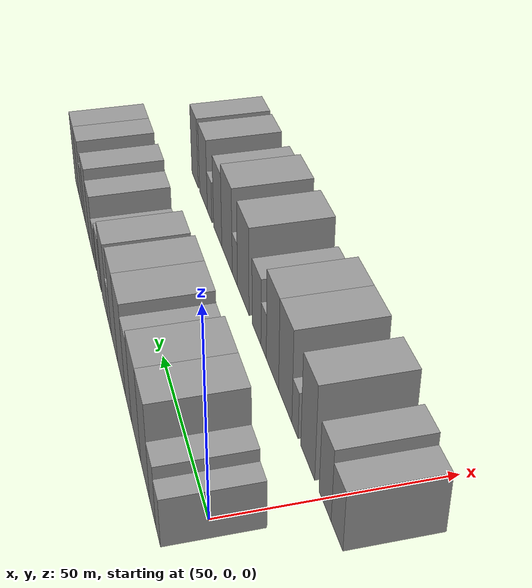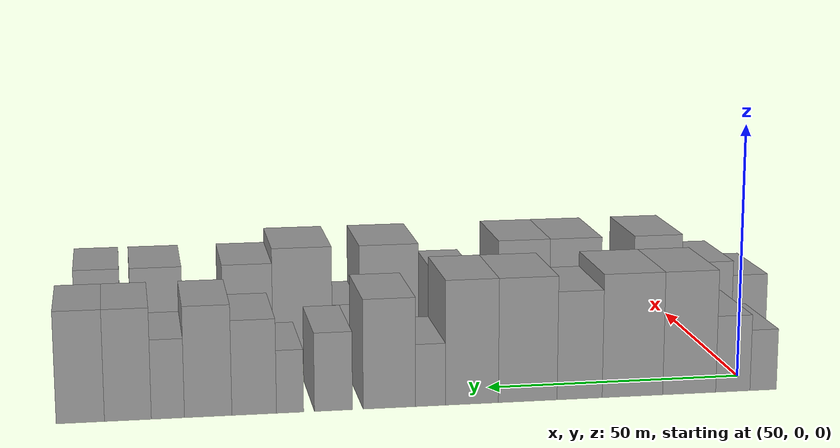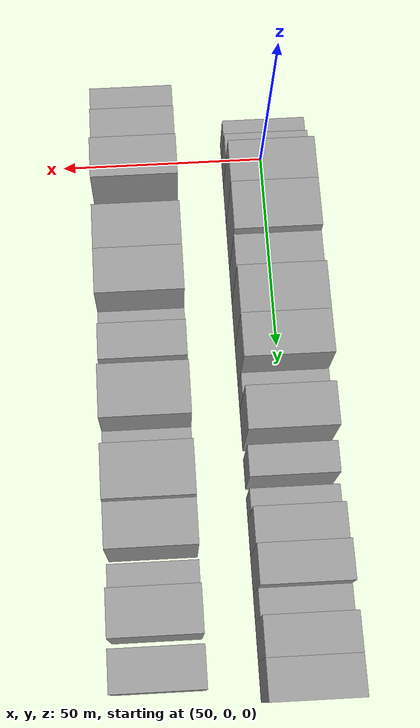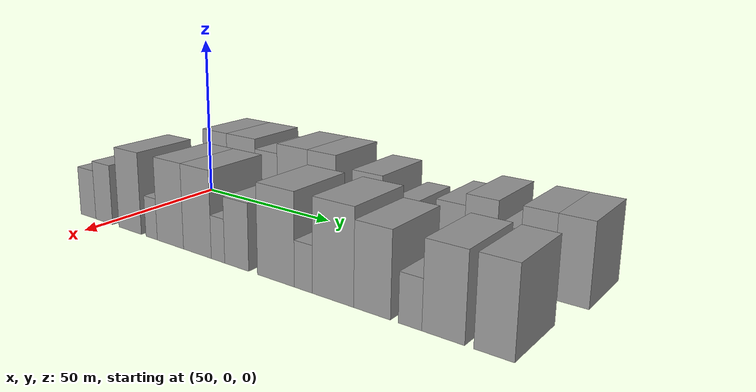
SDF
<sdf version="1.6">
 <world name="default">
  <model name="building_33">
   <static>1</static>
   <pose>50.0000 -1.9097 0 0.000000 0.000000 0.000000</pose>
   <link name="link">
    <pose>0 0 6.00 0 0 0</pose>
    <collision name="collision"><geometry><box><size>20.0000 5.2747 12.0000</size></box></geometry></collision>
    <visual name="visual">
     <cast_shadows>0</cast_shadows>
     <geometry><box><size>20.0000 5.2747 12.0000</size></box></geometry>
     <material>
      <script>
       <uri>model://grey_wall/materials/scripts</uri>
       <uri>model://grey_wall/materials/textures</uri>
       <name>vrc/grey_wall</name>
      </script>
     </material>
    </visual>
   </link>
  </model>
  <model name="building_34">
   <static>1</static>
   <pose>50.0000 4.1421 0 0.000000 0.000000 0.000000</pose>
   <link name="link">
    <pose>0 0 7.50 0 0 0</pose>
    <collision name="collision"><geometry><box><size>20.0000 6.8289 15.0000</size></box></geometry></collision>
    <visual name="visual">
     <cast_shadows>0</cast_shadows>
     <geometry><box><size>20.0000 6.8289 15.0000</size></box></geometry>
     <material>
      <script>
       <uri>model://grey_wall/materials/scripts</uri>
       <uri>model://grey_wall/materials/textures</uri>
       <name>vrc/grey_wall</name>
      </script>
     </material>
    </visual>
   </link>
  </model>
  <model name="building_35">
   <static>1</static>
   <pose>50.0000 12.7904 0 0.000000 0.000000 0.000000</pose>
   <link name="link">
    <pose>0 0 12.00 0 0 0</pose>
    <collision name="collision"><geometry><box><size>20.0000 10.4679 24.0000</size></box></geometry></collision>
    <visual name="visual">
     <cast_shadows>0</cast_shadows>
     <geometry><box><size>20.0000 10.4679 24.0000</size></box></geometry>
     <material>
      <script>
       <uri>model://grey_wall/materials/scripts</uri>
       <uri>model://grey_wall/materials/textures</uri>
       <name>vrc/grey_wall</name>
      </script>
     </material>
    </visual>
   </link>
  </model>
  <model name="building_36">
   <static>1</static>
   <pose>50.0000 23.9557 0 0.000000 0.000000 0.000000</pose>
   <link name="link">
    <pose>0 0 12.00 0 0 0</pose>
    <collision name="collision"><geometry><box><size>20.0000 11.8626 24.0000</size></box></geometry></collision>
    <visual name="visual">
     <cast_shadows>0</cast_shadows>
     <geometry><box><size>20.0000 11.8626 24.0000</size></box></geometry>
     <material>
      <script>
       <uri>model://grey_wall/materials/scripts</uri>
       <uri>model://grey_wall/materials/textures</uri>
       <name>vrc/grey_wall</name>
      </script>
     </material>
    </visual>
   </link>
  </model>
  <model name="building_37">
   <static>1</static>
   <pose>50.0000 34.2631 0 0.000000 0.000000 0.000000</pose>
   <link name="link">
    <pose>0 0 10.50 0 0 0</pose>
    <collision name="collision"><geometry><box><size>20.0000 8.7522 21.0000</size></box></geometry></collision>
    <visual name="visual">
     <cast_shadows>0</cast_shadows>
     <geometry><box><size>20.0000 8.7522 21.0000</size></box></geometry>
     <material>
      <script>
       <uri>model://grey_wall/materials/scripts</uri>
       <uri>model://grey_wall/materials/textures</uri>
       <name>vrc/grey_wall</name>
      </script>
     </material>
    </visual>
   </link>
  </model>
  <model name="building_38">
   <static>1</static>
   <pose>50.0000 44.2862 0 0.000000 0.000000 0.000000</pose>
   <link name="link">
    <pose>0 0 12.00 0 0 0</pose>
    <collision name="collision"><geometry><box><size>20.0000 11.2942 24.0000</size></box></geometry></collision>
    <visual name="visual">
     <cast_shadows>0</cast_shadows>
     <geometry><box><size>20.0000 11.2942 24.0000</size></box></geometry>
     <material>
      <script>
       <uri>model://grey_wall/materials/scripts</uri>
       <uri>model://grey_wall/materials/textures</uri>
       <name>vrc/grey_wall</name>
      </script>
     </material>
    </visual>
   </link>
  </model>
  <model name="building_39">
   <static>1</static>
   <pose>50.0000 54.9915 0 0.000000 0.000000 0.000000</pose>
   <link name="link">
    <pose>0 0 12.00 0 0 0</pose>
    <collision name="collision"><geometry><box><size>20.0000 10.1165 24.0000</size></box></geometry></collision>
    <visual name="visual">
     <cast_shadows>0</cast_shadows>
     <geometry><box><size>20.0000 10.1165 24.0000</size></box></geometry>
     <material>
      <script>
       <uri>model://grey_wall/materials/scripts</uri>
       <uri>model://grey_wall/materials/textures</uri>
       <name>vrc/grey_wall</name>
      </script>
     </material>
    </visual>
   </link>
  </model>
  <model name="building_40">
   <static>1</static>
   <pose>50.0000 62.8666 0 0.000000 0.000000 0.000000</pose>
   <link name="link">
    <pose>0 0 6.00 0 0 0</pose>
    <collision name="collision"><geometry><box><size>20.0000 5.6337 12.0000</size></box></geometry></collision>
    <visual name="visual">
     <cast_shadows>0</cast_shadows>
     <geometry><box><size>20.0000 5.6337 12.0000</size></box></geometry>
     <material>
      <script>
       <uri>model://grey_wall/materials/scripts</uri>
       <uri>model://grey_wall/materials/textures</uri>
       <name>vrc/grey_wall</name>
      </script>
     </material>
    </visual>
   </link>
  </model>
  <model name="building_41">
   <static>1</static>
   <pose>50.0000 70.6148 0 0.000000 0.000000 0.000000</pose>
   <link name="link">
    <pose>0 0 10.50 0 0 0</pose>
    <collision name="collision"><geometry><box><size>20.0000 9.8627 21.0000</size></box></geometry></collision>
    <visual name="visual">
     <cast_shadows>0</cast_shadows>
     <geometry><box><size>20.0000 9.8627 21.0000</size></box></geometry>
     <material>
      <script>
       <uri>model://grey_wall/materials/scripts</uri>
       <uri>model://grey_wall/materials/textures</uri>
       <name>vrc/grey_wall</name>
      </script>
     </material>
    </visual>
   </link>
  </model>
  <model name="building_42">
   <static>1</static>
   <pose>50.0000 81.0959 0 0.000000 0.000000 0.000000</pose>
   <link name="link">
    <pose>0 0 7.50 0 0 0</pose>
    <collision name="collision"><geometry><box><size>20.0000 7.0994 15.0000</size></box></geometry></collision>
    <visual name="visual">
     <cast_shadows>0</cast_shadows>
     <geometry><box><size>20.0000 7.0994 15.0000</size></box></geometry>
     <material>
      <script>
       <uri>model://grey_wall/materials/scripts</uri>
       <uri>model://grey_wall/materials/textures</uri>
       <name>vrc/grey_wall</name>
      </script>
     </material>
    </visual>
   </link>
  </model>
  <model name="building_43">
   <static>1</static>
   <pose>50.0000 89.1589 0 0.000000 0.000000 0.000000</pose>
   <link name="link">
    <pose>0 0 6.00 0 0 0</pose>
    <collision name="collision"><geometry><box><size>20.0000 5.0266 12.0000</size></box></geometry></collision>
    <visual name="visual">
     <cast_shadows>0</cast_shadows>
     <geometry><box><size>20.0000 5.0266 12.0000</size></box></geometry>
     <material>
      <script>
       <uri>model://grey_wall/materials/scripts</uri>
       <uri>model://grey_wall/materials/textures</uri>
       <name>vrc/grey_wall</name>
      </script>
     </material>
    </visual>
   </link>
  </model>
  <model name="building_44">
   <static>1</static>
   <pose>50.0000 95.7803 0 0.000000 0.000000 0.000000</pose>
   <link name="link">
    <pose>0 0 9.00 0 0 0</pose>
    <collision name="collision"><geometry><box><size>20.0000 8.2162 18.0000</size></box></geometry></collision>
    <visual name="visual">
     <cast_shadows>0</cast_shadows>
     <geometry><box><size>20.0000 8.2162 18.0000</size></box></geometry>
     <material>
      <script>
       <uri>model://grey_wall/materials/scripts</uri>
       <uri>model://grey_wall/materials/textures</uri>
       <name>vrc/grey_wall</name>
      </script>
     </material>
    </visual>
   </link>
  </model>
  <model name="building_45">
   <static>1</static>
   <pose>50.0000 104.2209 0 0.000000 0.000000 0.000000</pose>
   <link name="link">
    <pose>0 0 10.50 0 0 0</pose>
    <collision name="collision"><geometry><box><size>20.0000 8.6650 21.0000</size></box></geometry></collision>
    <visual name="visual">
     <cast_shadows>0</cast_shadows>
     <geometry><box><size>20.0000 8.6650 21.0000</size></box></geometry>
     <material>
      <script>
       <uri>model://grey_wall/materials/scripts</uri>
       <uri>model://grey_wall/materials/textures</uri>
       <name>vrc/grey_wall</name>
      </script>
     </material>
    </visual>
   </link>
  </model>
  <model name="building_46">
   <static>1</static>
   <pose>50.0000 111.5624 0 0.000000 0.000000 0.000000</pose>
   <link name="link">
    <pose>0 0 7.50 0 0 0</pose>
    <collision name="collision"><geometry><box><size>20.0000 6.0179 15.0000</size></box></geometry></collision>
    <visual name="visual">
     <cast_shadows>0</cast_shadows>
     <geometry><box><size>20.0000 6.0179 15.0000</size></box></geometry>
     <material>
      <script>
       <uri>model://grey_wall/materials/scripts</uri>
       <uri>model://grey_wall/materials/textures</uri>
       <name>vrc/grey_wall</name>
      </script>
     </material>
    </visual>
   </link>
  </model>
  <model name="building_47">
   <static>1</static>
   <pose>50.0000 118.7976 0 0.000000 0.000000 0.000000</pose>
   <link name="link">
    <pose>0 0 10.50 0 0 0</pose>
    <collision name="collision"><geometry><box><size>20.0000 8.4525 21.0000</size></box></geometry></collision>
    <visual name="visual">
     <cast_shadows>0</cast_shadows>
     <geometry><box><size>20.0000 8.4525 21.0000</size></box></geometry>
     <material>
      <script>
       <uri>model://grey_wall/materials/scripts</uri>
       <uri>model://grey_wall/materials/textures</uri>
       <name>vrc/grey_wall</name>
      </script>
     </material>
    </visual>
   </link>
  </model>
  <model name="building_48">
   <static>1</static>
   <pose>50.0000 127.3523 0 0.000000 0.000000 0.000000</pose>
   <link name="link">
    <pose>0 0 10.50 0 0 0</pose>
    <collision name="collision"><geometry><box><size>20.0000 8.6569 21.0000</size></box></geometry></collision>
    <visual name="visual">
     <cast_shadows>0</cast_shadows>
     <geometry><box><size>20.0000 8.6569 21.0000</size></box></geometry>
     <material>
      <script>
       <uri>model://grey_wall/materials/scripts</uri>
       <uri>model://grey_wall/materials/textures</uri>
       <name>vrc/grey_wall</name>
      </script>
     </material>
    </visual>
   </link>
  </model>
  <model name="building_96">
   <static>1</static>
   <pose>82.0000 -9.6031 0 0.000000 0.000000 0.000000</pose>
   <link name="link">
    <pose>0 0 7.50 0 0 0</pose>
    <collision name="collision"><geometry><box><size>20.0000 7.4662 15.0000</size></box></geometry></collision>
    <visual name="visual">
     <cast_shadows>0</cast_shadows>
     <geometry><box><size>20.0000 7.4662 15.0000</size></box></geometry>
     <material>
      <script>
       <uri>model://grey_wall/materials/scripts</uri>
       <uri>model://grey_wall/materials/textures</uri>
       <name>vrc/grey_wall</name>
      </script>
     </material>
    </visual>
   </link>
  </model>
  <model name="building_97">
   <static>1</static>
   <pose>82.0000 -1.8589 0 0.000000 0.000000 0.000000</pose>
   <link name="link">
    <pose>0 0 9.00 0 0 0</pose>
    <collision name="collision"><geometry><box><size>20.0000 8.0221 18.0000</size></box></geometry></collision>
    <visual name="visual">
     <cast_shadows>0</cast_shadows>
     <geometry><box><size>20.0000 8.0221 18.0000</size></box></geometry>
     <material>
      <script>
       <uri>model://grey_wall/materials/scripts</uri>
       <uri>model://grey_wall/materials/textures</uri>
       <name>vrc/grey_wall</name>
      </script>
     </material>
    </visual>
   </link>
  </model>
  <model name="building_98">
   <static>1</static>
   <pose>82.0000 10.2178 0 0.000000 0.000000 0.000000</pose>
   <link name="link">
    <pose>0 0 12.00 0 0 0</pose>
    <collision name="collision"><geometry><box><size>20.0000 10.1314 24.0000</size></box></geometry></collision>
    <visual name="visual">
     <cast_shadows>0</cast_shadows>
     <geometry><box><size>20.0000 10.1314 24.0000</size></box></geometry>
     <material>
      <script>
       <uri>model://grey_wall/materials/scripts</uri>
       <uri>model://grey_wall/materials/textures</uri>
       <name>vrc/grey_wall</name>
      </script>
     </material>
    </visual>
   </link>
  </model>
  <model name="building_99">
   <static>1</static>
   <pose>82.0000 19.7137 0 0.000000 0.000000 0.000000</pose>
   <link name="link">
    <pose>0 0 6.00 0 0 0</pose>
    <collision name="collision"><geometry><box><size>20.0000 4.8604 12.0000</size></box></geometry></collision>
    <visual name="visual">
     <cast_shadows>0</cast_shadows>
     <geometry><box><size>20.0000 4.8604 12.0000</size></box></geometry>
     <material>
      <script>
       <uri>model://grey_wall/materials/scripts</uri>
       <uri>model://grey_wall/materials/textures</uri>
       <name>vrc/grey_wall</name>
      </script>
     </material>
    </visual>
   </link>
  </model>
  <model name="building_100">
   <static>1</static>
   <pose>82.0000 27.5355 0 0.000000 0.000000 0.000000</pose>
   <link name="link">
    <pose>0 0 12.00 0 0 0</pose>
    <collision name="collision"><geometry><box><size>20.0000 10.7830 24.0000</size></box></geometry></collision>
    <visual name="visual">
     <cast_shadows>0</cast_shadows>
     <geometry><box><size>20.0000 10.7830 24.0000</size></box></geometry>
     <material>
      <script>
       <uri>model://grey_wall/materials/scripts</uri>
       <uri>model://grey_wall/materials/textures</uri>
       <name>vrc/grey_wall</name>
      </script>
     </material>
    </visual>
   </link>
  </model>
  <model name="building_101">
   <static>1</static>
   <pose>82.0000 38.2946 0 0.000000 0.000000 0.000000</pose>
   <link name="link">
    <pose>0 0 12.00 0 0 0</pose>
    <collision name="collision"><geometry><box><size>20.0000 10.7352 24.0000</size></box></geometry></collision>
    <visual name="visual">
     <cast_shadows>0</cast_shadows>
     <geometry><box><size>20.0000 10.7352 24.0000</size></box></geometry>
     <material>
      <script>
       <uri>model://grey_wall/materials/scripts</uri>
       <uri>model://grey_wall/materials/textures</uri>
       <name>vrc/grey_wall</name>
      </script>
     </material>
    </visual>
   </link>
  </model>
  <model name="building_102">
   <static>1</static>
   <pose>82.0000 46.1282 0 0.000000 0.000000 0.000000</pose>
   <link name="link">
    <pose>0 0 6.00 0 0 0</pose>
    <collision name="collision"><geometry><box><size>20.0000 4.9320 12.0000</size></box></geometry></collision>
    <visual name="visual">
     <cast_shadows>0</cast_shadows>
     <geometry><box><size>20.0000 4.9320 12.0000</size></box></geometry>
     <material>
      <script>
       <uri>model://grey_wall/materials/scripts</uri>
       <uri>model://grey_wall/materials/textures</uri>
       <name>vrc/grey_wall</name>
      </script>
     </material>
    </visual>
   </link>
  </model>
  <model name="building_103">
   <static>1</static>
   <pose>82.0000 52.8352 0 0.000000 0.000000 0.000000</pose>
   <link name="link">
    <pose>0 0 9.00 0 0 0</pose>
    <collision name="collision"><geometry><box><size>20.0000 8.4819 18.0000</size></box></geometry></collision>
    <visual name="visual">
     <cast_shadows>0</cast_shadows>
     <geometry><box><size>20.0000 8.4819 18.0000</size></box></geometry>
     <material>
      <script>
       <uri>model://grey_wall/materials/scripts</uri>
       <uri>model://grey_wall/materials/textures</uri>
       <name>vrc/grey_wall</name>
      </script>
     </material>
    </visual>
   </link>
  </model>
  <model name="building_104">
   <static>1</static>
   <pose>82.0000 66.0747 0 0.000000 0.000000 0.000000</pose>
   <link name="link">
    <pose>0 0 12.00 0 0 0</pose>
    <collision name="collision"><geometry><box><size>20.0000 11.9971 24.0000</size></box></geometry></collision>
    <visual name="visual">
     <cast_shadows>0</cast_shadows>
     <geometry><box><size>20.0000 11.9971 24.0000</size></box></geometry>
     <material>
      <script>
       <uri>model://grey_wall/materials/scripts</uri>
       <uri>model://grey_wall/materials/textures</uri>
       <name>vrc/grey_wall</name>
      </script>
     </material>
    </visual>
   </link>
  </model>
  <model name="building_105">
   <static>1</static>
   <pose>82.0000 74.8404 0 0.000000 0.000000 0.000000</pose>
   <link name="link">
    <pose>0 0 6.00 0 0 0</pose>
    <collision name="collision"><geometry><box><size>20.0000 5.5343 12.0000</size></box></geometry></collision>
    <visual name="visual">
     <cast_shadows>0</cast_shadows>
     <geometry><box><size>20.0000 5.5343 12.0000</size></box></geometry>
     <material>
      <script>
       <uri>model://grey_wall/materials/scripts</uri>
       <uri>model://grey_wall/materials/textures</uri>
       <name>vrc/grey_wall</name>
      </script>
     </material>
    </visual>
   </link>
  </model>
  <model name="building_106">
   <static>1</static>
   <pose>82.0000 83.5915 0 0.000000 0.000000 0.000000</pose>
   <link name="link">
    <pose>0 0 12.00 0 0 0</pose>
    <collision name="collision"><geometry><box><size>20.0000 11.9679 24.0000</size></box></geometry></collision>
    <visual name="visual">
     <cast_shadows>0</cast_shadows>
     <geometry><box><size>20.0000 11.9679 24.0000</size></box></geometry>
     <material>
      <script>
       <uri>model://grey_wall/materials/scripts</uri>
       <uri>model://grey_wall/materials/textures</uri>
       <name>vrc/grey_wall</name>
      </script>
     </material>
    </visual>
   </link>
  </model>
  <model name="building_107">
   <static>1</static>
   <pose>82.0000 94.5449 0 0.000000 0.000000 0.000000</pose>
   <link name="link">
    <pose>0 0 10.50 0 0 0</pose>
    <collision name="collision"><geometry><box><size>20.0000 9.9390 21.0000</size></box></geometry></collision>
    <visual name="visual">
     <cast_shadows>0</cast_shadows>
     <geometry><box><size>20.0000 9.9390 21.0000</size></box></geometry>
     <material>
      <script>
       <uri>model://grey_wall/materials/scripts</uri>
       <uri>model://grey_wall/materials/textures</uri>
       <name>vrc/grey_wall</name>
      </script>
     </material>
    </visual>
   </link>
  </model>
  <model name="building_108">
   <static>1</static>
   <pose>82.0000 104.4616 0 0.000000 0.000000 0.000000</pose>
   <link name="link">
    <pose>0 0 6.00 0 0 0</pose>
    <collision name="collision"><geometry><box><size>20.0000 5.8944 12.0000</size></box></geometry></collision>
    <visual name="visual">
     <cast_shadows>0</cast_shadows>
     <geometry><box><size>20.0000 5.8944 12.0000</size></box></geometry>
     <material>
      <script>
       <uri>model://grey_wall/materials/scripts</uri>
       <uri>model://grey_wall/materials/textures</uri>
       <name>vrc/grey_wall</name>
      </script>
     </material>
    </visual>
   </link>
  </model>
  <model name="building_109">
   <static>1</static>
   <pose>82.0000 112.4990 0 0.000000 0.000000 0.000000</pose>
   <link name="link">
    <pose>0 0 10.50 0 0 0</pose>
    <collision name="collision"><geometry><box><size>20.0000 10.1804 21.0000</size></box></geometry></collision>
    <visual name="visual">
     <cast_shadows>0</cast_shadows>
     <geometry><box><size>20.0000 10.1804 21.0000</size></box></geometry>
     <material>
      <script>
       <uri>model://grey_wall/materials/scripts</uri>
       <uri>model://grey_wall/materials/textures</uri>
       <name>vrc/grey_wall</name>
      </script>
     </material>
    </visual>
   </link>
  </model>
  <model name="building_110">
   <static>1</static>
   <pose>82.0000 124.0530 0 0.000000 0.000000 0.000000</pose>
   <link name="link">
    <pose>0 0 10.50 0 0 0</pose>
    <collision name="collision"><geometry><box><size>20.0000 8.9275 21.0000</size></box></geometry></collision>
    <visual name="visual">
     <cast_shadows>0</cast_shadows>
     <geometry><box><size>20.0000 8.9275 21.0000</size></box></geometry>
     <material>
      <script>
       <uri>model://grey_wall/materials/scripts</uri>
       <uri>model://grey_wall/materials/textures</uri>
       <name>vrc/grey_wall</name>
      </script>
     </material>
    </visual>
   </link>
  </model>
 </world>
</sdf>
